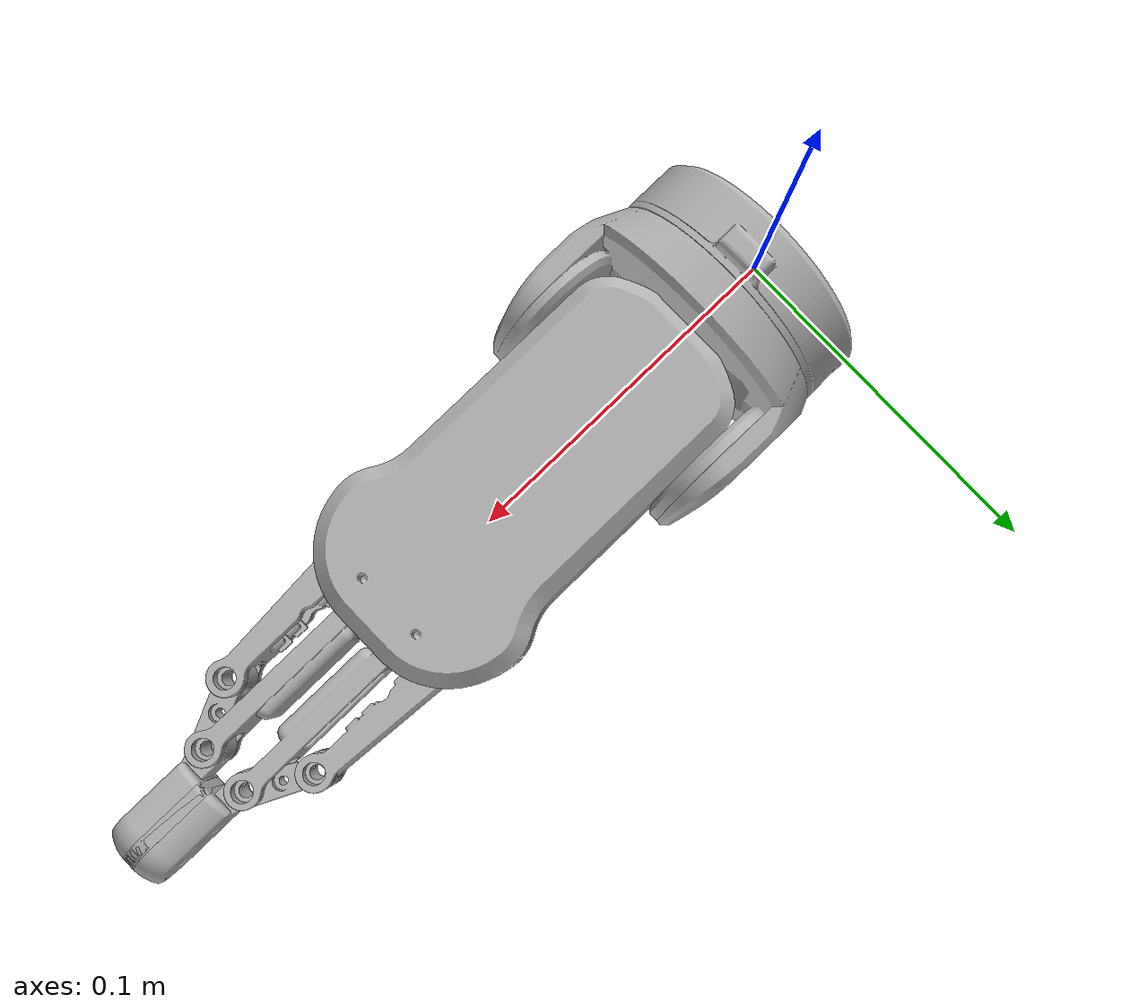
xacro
<?xml version="1.0" ?>
<robot name="onrobot_rg2_v2" xmlns:xacro="http://www.ros.org/wiki/xacro">

<xacro:include filename="$(find onrobot_rg2_v2_description)/urdf/materials.xacro" />
<xacro:include filename="$(find onrobot_rg2_v2_description)/urdf/onrobot_rg2_v2.trans" />
<xacro:include filename="$(find onrobot_rg2_v2_description)/urdf/onrobot_rg2_v2.gazebo" />
<link name="base_link">
  <inertial>
    <origin rpy="0 0 0" xyz="0.018484801879113732 0.0002666270895124844 0.0005429539192523968"/>
    <mass value="0.700133355909666"/>
    <inertia ixx="0.000556" ixy="1e-06" ixz="4e-06" iyy="0.000374" iyz="0.0" izz="0.000525"/>
  </inertial>
  <visual>
    <origin rpy="0 0 0" xyz="0 0 0"/>
    <geometry>
      <mesh filename="package://onrobot_rg2_v2_description/meshes/base_link.stl" scale="0.001 0.001 0.001"/>
    </geometry>
    <material name="silver_default"/>
  </visual>
  <collision>
    <origin rpy="0 0 0" xyz="0 0 0"/>
    <geometry>
      <mesh filename="package://onrobot_rg2_v2_description/meshes/base_link.stl" scale="0.001 0.001 0.001"/>
    </geometry>
  </collision>
</link>

<link name="body_link_1">
  <inertial>
    <origin rpy="0 0 0" xyz="0.0335480392891447 8.79646204020917e-06 4.6893244245206084e-05"/>
    <mass value="1.445972069811102"/>
    <inertia ixx="0.000505" ixy="-1e-06" ixz="2e-06" iyy="0.001511" iyz="-0.0" izz="0.001676"/>
  </inertial>
  <visual>
    <origin rpy="0 0 0" xyz="-0.0468 -0.0 0.0"/>
    <geometry>
      <mesh filename="package://onrobot_rg2_v2_description/meshes/body_link_1.stl" scale="0.001 0.001 0.001"/>
    </geometry>
    <material name="silver_default"/>
  </visual>
  <collision>
    <origin rpy="0 0 0" xyz="-0.0468 -0.0 0.0"/>
    <geometry>
      <mesh filename="package://onrobot_rg2_v2_description/meshes/body_link_1.stl" scale="0.001 0.001 0.001"/>
    </geometry>
  </collision>
</link>

<link name="finger1_link_1">
  <inertial>
    <origin rpy="0 0 0" xyz="-0.1228 0.017 0.0"/>
    <mass value="0.0"/>
    <inertia ixx="0.0" ixy="0.0" ixz="0.0" iyy="0.0" iyz="0.0" izz="0.0"/>
  </inertial>
  <visual>
    <origin rpy="0 0 0" xyz="-0.1228 0.017 0.0"/>
    <geometry>
      <mesh filename="package://onrobot_rg2_v2_description/meshes/finger1_link_1.stl" scale="0.001 0.001 0.001"/>
    </geometry>
    <material name="silver_default"/>
  </visual>
  <collision>
    <origin rpy="0 0 0" xyz="-0.1228 0.017 0.0"/>
    <geometry>
      <mesh filename="package://onrobot_rg2_v2_description/meshes/finger1_link_1.stl" scale="0.001 0.001 0.001"/>
    </geometry>
  </collision>
</link>

<link name="finger1_inner_knuckle_link_1">
  <inertial>
    <origin rpy="0 0 0" xyz="0.02153782085119671 0.000511825858720256 -6.355829706074682e-06"/>
    <mass value="0.029893327924651044"/>
    <inertia ixx="2e-06" ixy="-0.0" ixz="0.0" iyy="1.3e-05" iyz="0.0" izz="1.2e-05"/>
  </inertial>
  <visual>
    <origin rpy="0 0 0" xyz="-0.1393 0.0075 0.0"/>
    <geometry>
      <mesh filename="package://onrobot_rg2_v2_description/meshes/finger1_inner_knuckle_link_1.stl" scale="0.001 0.001 0.001"/>
    </geometry>
    <material name="silver_default"/>
  </visual>
  <collision>
    <origin rpy="0 0 0" xyz="-0.1393 0.0075 0.0"/>
    <geometry>
      <mesh filename="package://onrobot_rg2_v2_description/meshes/finger1_inner_knuckle_link_1.stl" scale="0.001 0.001 0.001"/>
    </geometry>
  </collision>
</link>

<link name="finger1_tip_link_1">
  <inertial>
    <origin rpy="0 0 0" xyz="0.02875484074660989 0.011139968794823504 1.5264873388075844e-10"/>
    <mass value="0.06346444954006894"/>
    <inertia ixx="3e-06" ixy="-4e-06" ixz="0.0" iyy="1.5e-05" iyz="-0.0" izz="1.6e-05"/>
  </inertial>
  <visual>
    <origin rpy="0 0 0" xyz="-0.1778 0.017 0.0"/>
    <geometry>
      <mesh filename="package://onrobot_rg2_v2_description/meshes/finger1_tip_link_1.stl" scale="0.001 0.001 0.001"/>
    </geometry>
    <material name="silver_default"/>
  </visual>
  <collision>
    <origin rpy="0 0 0" xyz="-0.1778 0.017 0.0"/>
    <geometry>
      <mesh filename="package://onrobot_rg2_v2_description/meshes/finger1_tip_link_1.stl" scale="0.001 0.001 0.001"/>
    </geometry>
  </collision>
</link>

<link name="finger2_link_1">
  <inertial>
    <origin rpy="0 0 0" xyz="-0.1228 -0.017 0.0"/>
    <mass value="0.0"/>
    <inertia ixx="0.0" ixy="0.0" ixz="0.0" iyy="0.0" iyz="0.0" izz="0.0"/>
  </inertial>
  <visual>
    <origin rpy="0 0 0" xyz="-0.1228 -0.017 0.0"/>
    <geometry>
      <mesh filename="package://onrobot_rg2_v2_description/meshes/finger2_link_1.stl" scale="0.001 0.001 0.001"/>
    </geometry>
    <material name="silver_default"/>
  </visual>
  <collision>
    <origin rpy="0 0 0" xyz="-0.1228 -0.017 0.0"/>
    <geometry>
      <mesh filename="package://onrobot_rg2_v2_description/meshes/finger2_link_1.stl" scale="0.001 0.001 0.001"/>
    </geometry>
  </collision>
</link>

<link name="finger2_inner_knuckle_link_1">
  <inertial>
    <origin rpy="0 0 0" xyz="0.02153782085119685 -0.0005118258586924648 6.355819738430073e-06"/>
    <mass value="0.029893327924651044"/>
    <inertia ixx="2e-06" ixy="0.0" ixz="-0.0" iyy="1.3e-05" iyz="0.0" izz="1.2e-05"/>
  </inertial>
  <visual>
    <origin rpy="0 0 0" xyz="-0.1393 -0.0075 0.0"/>
    <geometry>
      <mesh filename="package://onrobot_rg2_v2_description/meshes/finger2_inner_knuckle_link_1.stl" scale="0.001 0.001 0.001"/>
    </geometry>
    <material name="silver_default"/>
  </visual>
  <collision>
    <origin rpy="0 0 0" xyz="-0.1393 -0.0075 0.0"/>
    <geometry>
      <mesh filename="package://onrobot_rg2_v2_description/meshes/finger2_inner_knuckle_link_1.stl" scale="0.001 0.001 0.001"/>
    </geometry>
  </collision>
</link>

<link name="finger2_tip_link_1">
  <inertial>
    <origin rpy="0 0 0" xyz="0.028754840746610305 -0.011139968794797603 -1.6261614635547747e-10"/>
    <mass value="0.06346444954006894"/>
    <inertia ixx="3e-06" ixy="4e-06" ixz="-0.0" iyy="1.5e-05" iyz="-0.0" izz="1.6e-05"/>
  </inertial>
  <visual>
    <origin rpy="0 0 0" xyz="-0.1778 -0.017 0.0"/>
    <geometry>
      <mesh filename="package://onrobot_rg2_v2_description/meshes/finger2_tip_link_1.stl" scale="0.001 0.001 0.001"/>
    </geometry>
    <material name="silver_default"/>
  </visual>
  <collision>
    <origin rpy="0 0 0" xyz="-0.1778 -0.017 0.0"/>
    <geometry>
      <mesh filename="package://onrobot_rg2_v2_description/meshes/finger2_tip_link_1.stl" scale="0.001 0.001 0.001"/>
    </geometry>
  </collision>
</link>

<joint name="wrist_joint" type="revolute">
  <origin rpy="0 0 0" xyz="0.0468 0.0 0.0"/>
  <parent link="base_link"/>
  <child link="body_link_1"/>
  <axis xyz="0.0 -1.0 0.0"/>
  <limit effort="100" lower="-0.785398" upper="0.785398" velocity="100"/>
</joint>

<joint name="finger1_joint" type="revolute">
  <origin rpy="0 0 0" xyz="0.076 -0.017 0.0"/>
  <parent link="body_link_1"/>
  <child link="finger1_link_1"/>
  <axis xyz="0.0 -0.0 -1.0"/>
  <limit effort="100" lower="0.0" upper="1.308997" velocity="100"/>
</joint>

<joint name="passive_finger1_inner_knuckle_joint" type="continuous">
  <origin rpy="0 0 0" xyz="0.0925 -0.0075 0.0"/>
  <parent link="body_link_1"/>
  <child link="finger1_inner_knuckle_link_1"/>
  <axis xyz="0.0 -0.0 -1.0"/>
  <limit lower="-3.14" upper="3.14" effort="0.1" velocity="100" />
  <mimic joint="finger1_joint" multiplier="1"/>
</joint>

<joint name="passive_finger1_tip_joint" type="continuous">
  <origin rpy="0 0 0" xyz="0.055 0.0 0.0"/>
  <parent link="finger1_link_1"/>
  <child link="finger1_tip_link_1"/>
  <axis xyz="-0.0 0.0 -1.0"/>
  <limit lower="-3.14" upper="3.14" effort="0.1" velocity="100" />
  <mimic joint="finger1_joint" multiplier="-1"/>
</joint>

<joint name="passive_finger2_joint" type="continuous">
  <origin rpy="0 0 0" xyz="0.076 0.017 0.0"/>
  <parent link="body_link_1"/>
  <child link="finger2_link_1"/>
  <axis xyz="-0.0 0.0 1.0"/>
  <limit lower="-3.14" upper="3.14" effort="0.1" velocity="100" />
  <mimic joint="finger1_joint" multiplier="1"/>
</joint>

<joint name="passive_finger2_innner_knuckle_joint" type="continuous">
  <origin rpy="0 0 0" xyz="0.0925 0.0075 0.0"/>
  <parent link="body_link_1"/>
  <child link="finger2_inner_knuckle_link_1"/>
  <axis xyz="-0.0 0.0 1.0"/>
  <limit lower="-3.14" upper="3.14" effort="0.1" velocity="100" />
  <mimic joint="passive_finger2_joint" multiplier="1"/>
</joint>

<joint name="passive_finger2_tip_joint" type="continuous">
  <origin rpy="0 0 0" xyz="0.055 0.0 0.0"/>
  <parent link="finger2_link_1"/>
  <child link="finger2_tip_link_1"/>
  <axis xyz="-0.0 -0.0 1.0"/>
  <limit lower="-3.14" upper="3.14" effort="0.1" velocity="100" />
  <mimic joint="passive_finger2_joint" multiplier="-1"/>
</joint>

</robot>

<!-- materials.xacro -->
<robot name="onrobot_rg2_v2" xmlns:xacro="http://www.ros.org/wiki/xacro" >

<material name="silver_default">
  <color rgba="0.700 0.700 0.700 1.000"/>
</material>

</robot>

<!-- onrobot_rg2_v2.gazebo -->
<robot name="onrobot_rg2_v2" xmlns:xacro="http://www.ros.org/wiki/xacro" >

<xacro:property name="body_color" value="Gazebo/Silver" />

<gazebo>
  <plugin filename="libgazebo_ros_control.so" name="control"/>
</gazebo>
<gazebo reference="base_link">
  <material>${body_color}</material>
  <mu1>0.2</mu1>
  <mu2>0.2</mu2>
  <selfCollide>true</selfCollide>
  <gravity>true</gravity>
</gazebo>

<gazebo reference="body_link_1">
  <material>${body_color}</material>
  <mu1>0.2</mu1>
  <mu2>0.2</mu2>
  <selfCollide>true</selfCollide>
</gazebo>

<gazebo reference="finger1_link_1">
  <material>${body_color}</material>
  <mu1>0.2</mu1>
  <mu2>0.2</mu2>
  <selfCollide>true</selfCollide>
</gazebo>

<gazebo reference="finger1_inner_knuckle_link_1">
  <material>${body_color}</material>
  <mu1>0.2</mu1>
  <mu2>0.2</mu2>
  <selfCollide>true</selfCollide>
</gazebo>

<gazebo reference="finger1_tip_link_1">
  <material>${body_color}</material>
  <mu1>0.2</mu1>
  <mu2>0.2</mu2>
  <selfCollide>true</selfCollide>
</gazebo>

<gazebo reference="finger2_link_1">
  <material>${body_color}</material>
  <mu1>0.2</mu1>
  <mu2>0.2</mu2>
  <selfCollide>true</selfCollide>
</gazebo>

<gazebo reference="finger2_inner_knuckle_link_1">
  <material>${body_color}</material>
  <mu1>0.2</mu1>
  <mu2>0.2</mu2>
  <selfCollide>true</selfCollide>
</gazebo>

<gazebo reference="finger2_tip_link_1">
  <material>${body_color}</material>
  <mu1>0.2</mu1>
  <mu2>0.2</mu2>
  <selfCollide>true</selfCollide>
</gazebo>

</robot>
